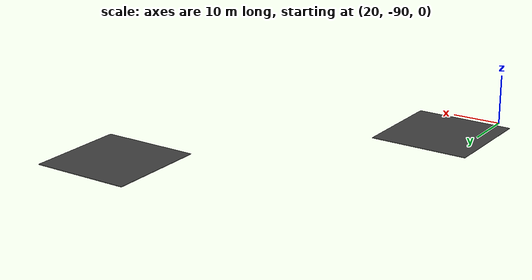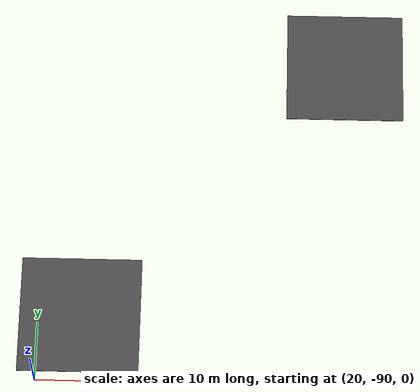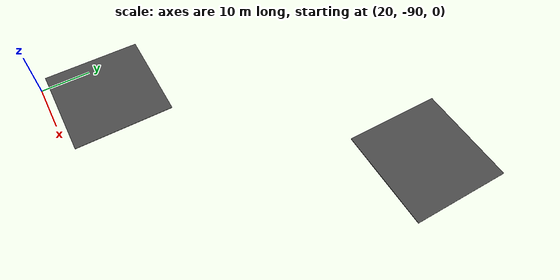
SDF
<sdf version="1.6">
 <world name="default">
  <model name="asphalt_plane">
   <static>1</static>
   <link name="link">
    <collision name="collision"><geometry><box><size>20 20 0.1</size></box></geometry></collision>
    <visual name="visual">
     <cast_shadows>0</cast_shadows>
     <geometry><box><size>20 20 0.1</size></box></geometry>
     <material>
      <script>
       <uri>model://asphalt_plane/materials/scripts</uri>
       <uri>model://asphalt_plane/materials/textures</uri>
       <name>vrc/asphalt</name>
      </script>
     </material>
    </visual>
   </link>
   <pose>70.7475 -31.5972 0 0 -0 0</pose>
  </model>
  <model name="asphalt_plane_27">
   <static>1</static>
   <link name="link">
    <collision name="collision"><geometry><box><size>20 20 0.1</size></box></geometry></collision>
    <visual name="visual">
     <cast_shadows>0</cast_shadows>
     <geometry><box><size>20 20 0.1</size></box></geometry>
     <material>
      <script>
       <uri>model://asphalt_plane/materials/scripts</uri>
       <uri>model://asphalt_plane/materials/textures</uri>
       <name>vrc/asphalt</name>
      </script>
     </material>
    </visual>
   </link>
   <pose>26.9397 -78.4242 0 0 -0 0</pose>
  </model>
 </world>
</sdf>
